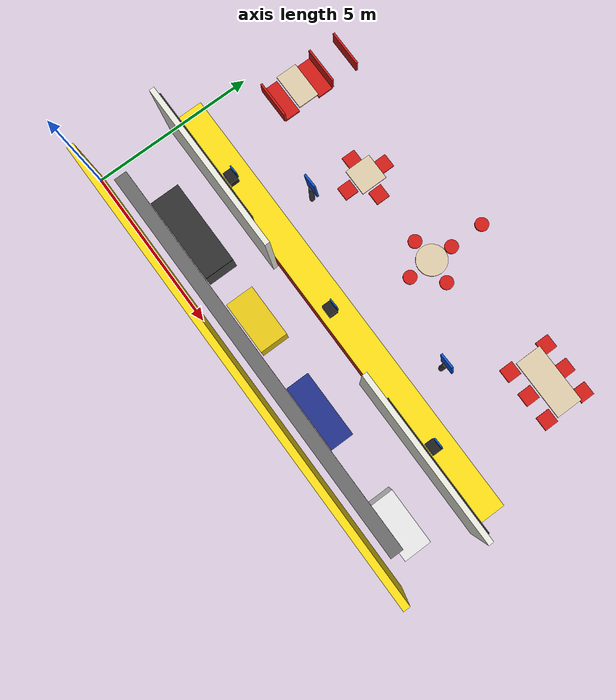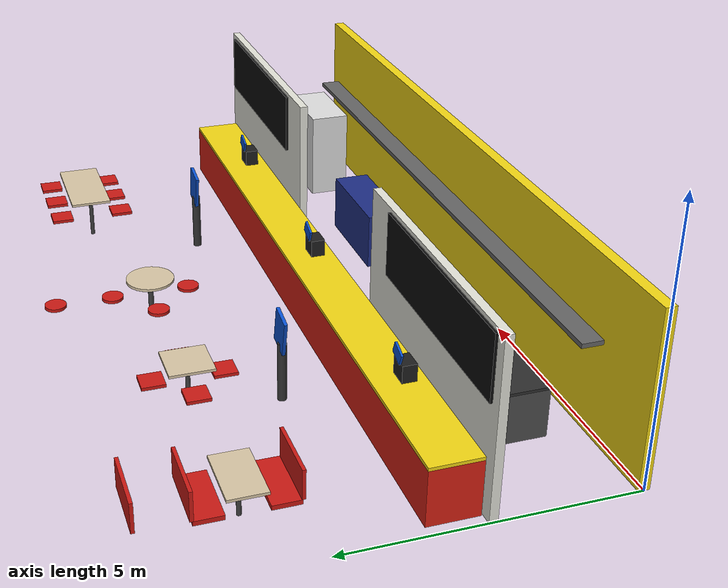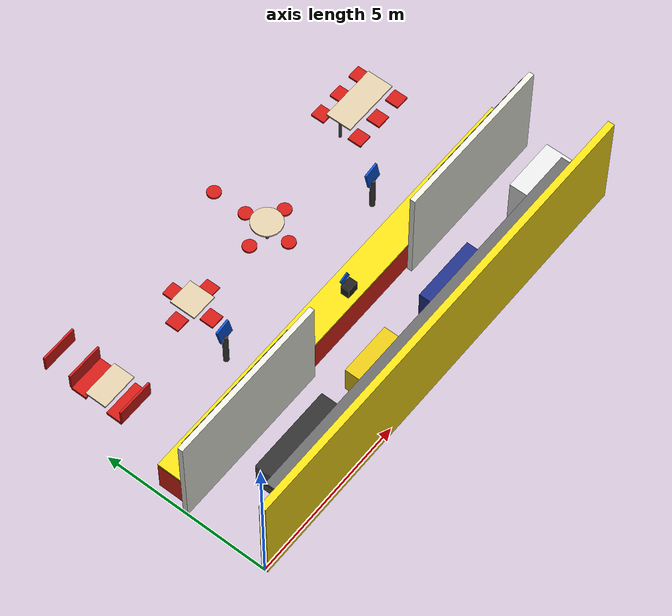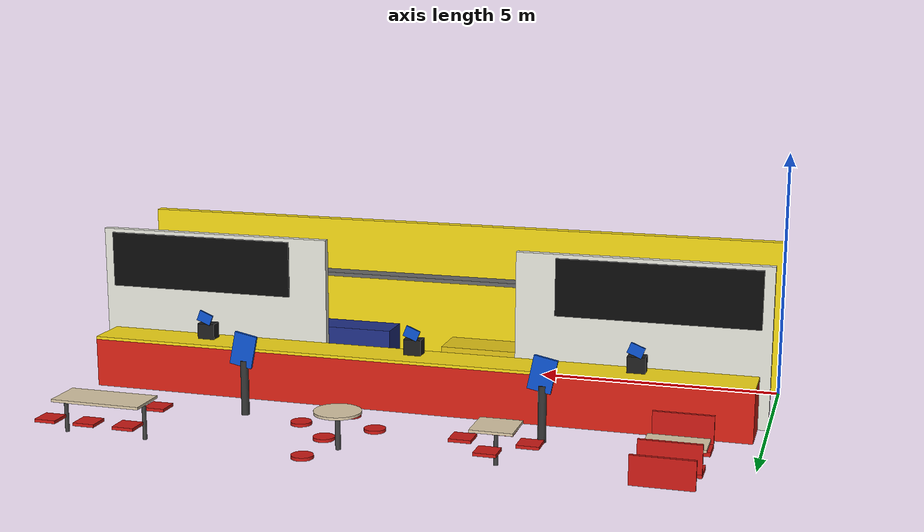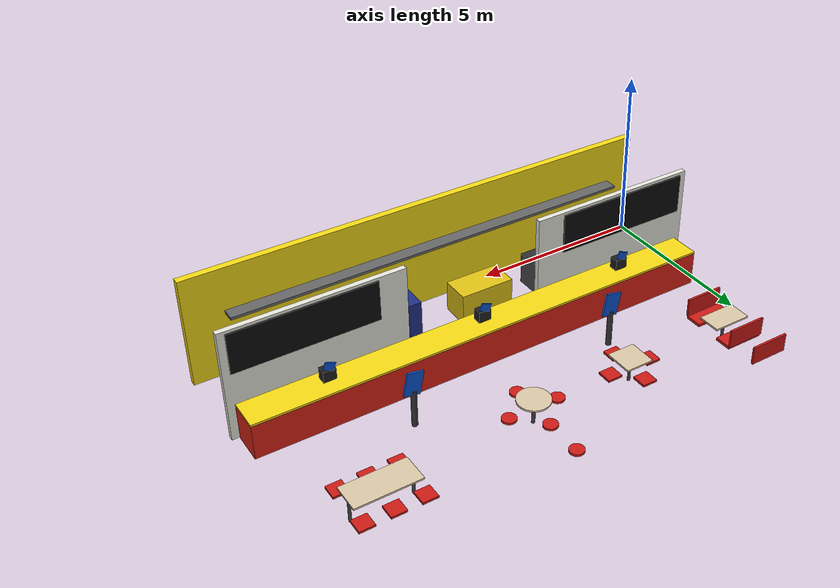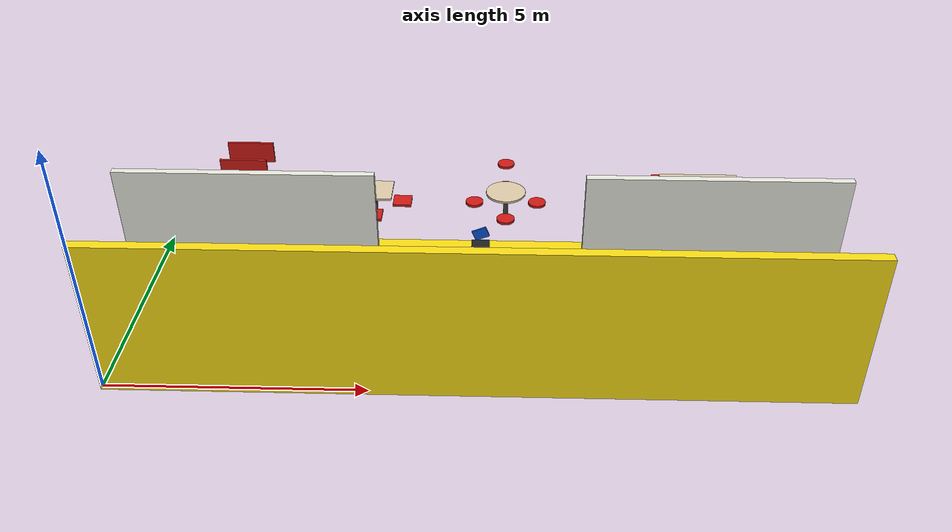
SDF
<sdf version="1.9">
 <world name="resto">
  <model name="wall_back">
   <static>true</static>
   <pose>7 0 1.6 0 0 0</pose>
   <link name="link">
    <collision name="col"><geometry><box><size>14 0.2 3.2</size></box></geometry></collision>
    <visual name="vis">
     <geometry><box><size>14 0.2 3.2</size></box></geometry>
     <material>
      <ambient>0.96 0.85 0.08 1</ambient>
      <diffuse>0.96 0.85 0.08 1</diffuse>
      <specular>0.1 0.1 0.05 1</specular>
     </material>
    </visual>
   </link>
  </model>
  <model name="kitchen_wall_left">
   <static>true</static>
   <pose>2.5 2.5 1.6 0 0 0</pose>
   <link name="link">
    <collision name="col"><geometry><box><size>5 0.15 3.2</size></box></geometry></collision>
    <visual name="vis">
     <geometry><box><size>5 0.15 3.2</size></box></geometry>
     <material><ambient>0.9 0.9 0.86 1</ambient><diffuse>0.9 0.9 0.86 1</diffuse></material>
    </visual>
   </link>
  </model>
  <model name="kitchen_wall_right">
   <static>true</static>
   <pose>11.5 2.5 1.6 0 0 0</pose>
   <link name="link">
    <collision name="col"><geometry><box><size>5 0.15 3.2</size></box></geometry></collision>
    <visual name="vis">
     <geometry><box><size>5 0.15 3.2</size></box></geometry>
     <material><ambient>0.9 0.9 0.86 1</ambient><diffuse>0.9 0.9 0.86 1</diffuse></material>
    </visual>
   </link>
  </model>
  <model name="kitchen_grill">
   <static>true</static>
   <pose>3.0 1.2 0.45 0 0 0</pose>
   <link name="link">
    <collision name="col"><geometry><box><size>2.6 0.9 0.9</size></box></geometry></collision>
    <visual name="vis">
     <geometry><box><size>2.6 0.9 0.9</size></box></geometry>
     <material>
      <ambient>0.28 0.28 0.28 1</ambient>
      <diffuse>0.3 0.3 0.3 1</diffuse>
      <specular>0.65 0.65 0.65 1</specular>
     </material>
    </visual>
   </link>
  </model>
  <model name="kitchen_grill_top">
   <static>true</static>
   <pose>3.0 1.2 0.92 0 0 0</pose>
   <link name="link">
    <collision name="col"><geometry><box><size>2.6 0.9 0.05</size></box></geometry></collision>
    <visual name="vis">
     <geometry><box><size>2.6 0.9 0.05</size></box></geometry>
     <material>
      <ambient>0.18 0.18 0.18 1</ambient>
      <diffuse>0.18 0.18 0.18 1</diffuse>
      <specular>0.85 0.85 0.85 1</specular>
     </material>
    </visual>
   </link>
  </model>
  <model name="kitchen_fryer">
   <static>true</static>
   <pose>6.0 1.2 0.45 0 0 0</pose>
   <link name="link">
    <collision name="col"><geometry><box><size>1.6 0.85 0.9</size></box></geometry></collision>
    <visual name="vis">
     <geometry><box><size>1.6 0.85 0.9</size></box></geometry>
     <material>
      <ambient>0.88 0.76 0.08 1</ambient>
      <diffuse>0.88 0.76 0.08 1</diffuse>
      <specular>0.4 0.35 0.1 1</specular>
     </material>
    </visual>
   </link>
  </model>
  <model name="kitchen_drinks_machine">
   <static>true</static>
   <pose>9.0 1.1 0.55 0 0 0</pose>
   <link name="link">
    <collision name="col"><geometry><box><size>2.0 0.7 1.1</size></box></geometry></collision>
    <visual name="vis">
     <geometry><box><size>2.0 0.7 1.1</size></box></geometry>
     <material>
      <ambient>0.12 0.18 0.52 1</ambient>
      <diffuse>0.12 0.18 0.52 1</diffuse>
      <specular>0.5 0.5 0.8 1</specular>
     </material>
    </visual>
   </link>
  </model>
  <model name="kitchen_fridge">
   <static>true</static>
   <pose>12.5 1.0 0.9 0 0 0</pose>
   <link name="link">
    <collision name="col"><geometry><box><size>1.6 0.8 1.8</size></box></geometry></collision>
    <visual name="vis">
     <geometry><box><size>1.6 0.8 1.8</size></box></geometry>
     <material>
      <ambient>0.88 0.88 0.88 1</ambient>
      <diffuse>0.88 0.88 0.88 1</diffuse>
      <specular>0.7 0.7 0.7 1</specular>
     </material>
    </visual>
   </link>
  </model>
  <model name="kitchen_warming_shelf">
   <static>true</static>
   <pose>7 0.55 2.1 0 0 0</pose>
   <link name="link">
    <collision name="col"><geometry><box><size>12 0.38 0.08</size></box></geometry></collision>
    <visual name="vis">
     <geometry><box><size>12 0.38 0.08</size></box></geometry>
     <material>
      <ambient>0.4 0.4 0.4 1</ambient>
      <diffuse>0.4 0.4 0.4 1</diffuse>
      <specular>0.75 0.75 0.75 1</specular>
     </material>
    </visual>
   </link>
  </model>
  <model name="menu_board_left">
   <static>true</static>
   <pose>2.2 2.58 2.55 0 0 0</pose>
   <link name="link">
    <collision name="col"><geometry><box><size>4.0 0.08 1.15</size></box></geometry></collision>
    <visual name="vis">
     <geometry><box><size>4.0 0.08 1.15</size></box></geometry>
     <material>
      <ambient>0.04 0.04 0.04 1</ambient>
      <diffuse>0.04 0.04 0.04 1</diffuse>
      <emissive>0.01 0.12 0.01 1</emissive>
      <specular>0.5 0.5 0.5 1</specular>
     </material>
    </visual>
   </link>
  </model>
  <model name="menu_board_right">
   <static>true</static>
   <pose>11.8 2.58 2.55 0 0 0</pose>
   <link name="link">
    <collision name="col"><geometry><box><size>4.0 0.08 1.15</size></box></geometry></collision>
    <visual name="vis">
     <geometry><box><size>4.0 0.08 1.15</size></box></geometry>
     <material>
      <ambient>0.04 0.04 0.04 1</ambient>
      <diffuse>0.04 0.04 0.04 1</diffuse>
      <emissive>0.01 0.12 0.01 1</emissive>
      <specular>0.5 0.5 0.5 1</specular>
     </material>
    </visual>
   </link>
  </model>
  <model name="counter_base">
   <static>true</static>
   <pose>7 3.05 0.5 0 0 0</pose>
   <link name="link">
    <collision name="col"><geometry><box><size>13.6 0.9 1.0</size></box></geometry></collision>
    <visual name="vis">
     <geometry><box><size>13.6 0.9 1.0</size></box></geometry>
     <material>
      <ambient>0.85 0.13 0.08 1</ambient>
      <diffuse>0.85 0.13 0.08 1</diffuse>
      <specular>0.2 0.1 0.1 1</specular>
     </material>
    </visual>
   </link>
  </model>
  <model name="counter_top">
   <static>true</static>
   <pose>7 3.05 1.03 0 0 0</pose>
   <link name="link">
    <collision name="col"><geometry><box><size>13.6 0.9 0.06</size></box></geometry></collision>
    <visual name="vis">
     <geometry><box><size>13.6 0.9 0.06</size></box></geometry>
     <material>
      <ambient>0.96 0.85 0.08 1</ambient>
      <diffuse>0.96 0.85 0.08 1</diffuse>
      <specular>0.55 0.5 0.1 1</specular>
     </material>
    </visual>
   </link>
  </model>
  <model name="reg1_body">
   <static>true</static>
   <pose>2.5 2.92 1.2 0 0 0</pose>
   <link name="link">
    <collision name="col"><geometry><box><size>0.36 0.26 0.36</size></box></geometry></collision>
    <visual name="vis">
     <geometry><box><size>0.36 0.26 0.36</size></box></geometry>
     <material>
      <ambient>0.1 0.1 0.1 1</ambient>
      <diffuse>0.12 0.12 0.12 1</diffuse>
      <specular>0.5 0.5 0.5 1</specular>
     </material>
    </visual>
   </link>
  </model>
  <model name="reg1_screen">
   <static>true</static>
   <pose>2.5 3.06 1.52 0 -0.38 0</pose>
   <link name="link">
    <collision name="col"><geometry><box><size>0.30 0.04 0.22</size></box></geometry></collision>
    <visual name="vis">
     <geometry><box><size>0.30 0.04 0.22</size></box></geometry>
     <material>
      <ambient>0.04 0.32 0.82 1</ambient>
      <diffuse>0.04 0.32 0.82 1</diffuse>
      <emissive>0.02 0.18 0.48 1</emissive>
      <specular>0.85 0.85 0.95 1</specular>
     </material>
    </visual>
   </link>
  </model>
  <model name="reg2_body">
   <static>true</static>
   <pose>7.0 2.92 1.2 0 0 0</pose>
   <link name="link">
    <collision name="col"><geometry><box><size>0.36 0.26 0.36</size></box></geometry></collision>
    <visual name="vis">
     <geometry><box><size>0.36 0.26 0.36</size></box></geometry>
     <material>
      <ambient>0.1 0.1 0.1 1</ambient>
      <diffuse>0.12 0.12 0.12 1</diffuse>
      <specular>0.5 0.5 0.5 1</specular>
     </material>
    </visual>
   </link>
  </model>
  <model name="reg2_screen">
   <static>true</static>
   <pose>7.0 3.06 1.52 0 -0.38 0</pose>
   <link name="link">
    <collision name="col"><geometry><box><size>0.30 0.04 0.22</size></box></geometry></collision>
    <visual name="vis">
     <geometry><box><size>0.30 0.04 0.22</size></box></geometry>
     <material>
      <ambient>0.04 0.32 0.82 1</ambient>
      <diffuse>0.04 0.32 0.82 1</diffuse>
      <emissive>0.02 0.18 0.48 1</emissive>
      <specular>0.85 0.85 0.95 1</specular>
     </material>
    </visual>
   </link>
  </model>
  <model name="reg3_body">
   <static>true</static>
   <pose>11.5 2.92 1.2 0 0 0</pose>
   <link name="link">
    <collision name="col"><geometry><box><size>0.36 0.26 0.36</size></box></geometry></collision>
    <visual name="vis">
     <geometry><box><size>0.36 0.26 0.36</size></box></geometry>
     <material>
      <ambient>0.1 0.1 0.1 1</ambient>
      <diffuse>0.12 0.12 0.12 1</diffuse>
      <specular>0.5 0.5 0.5 1</specular>
     </material>
    </visual>
   </link>
  </model>
  <model name="reg3_screen">
   <static>true</static>
   <pose>11.5 3.06 1.52 0 -0.38 0</pose>
   <link name="link">
    <collision name="col"><geometry><box><size>0.30 0.04 0.22</size></box></geometry></collision>
    <visual name="vis">
     <geometry><box><size>0.30 0.04 0.22</size></box></geometry>
     <material>
      <ambient>0.04 0.32 0.82 1</ambient>
      <diffuse>0.04 0.32 0.82 1</diffuse>
      <emissive>0.02 0.18 0.48 1</emissive>
      <specular>0.85 0.85 0.95 1</specular>
     </material>
    </visual>
   </link>
  </model>
  <model name="kiosk1_pole">
   <static>true</static>
   <pose>4.0 4.5 0.55 0 0 0</pose>
   <link name="link">
    <collision name="col">
     <geometry><cylinder><radius>0.08</radius><length>1.1</length></cylinder></geometry>
    </collision>
    <visual name="vis">
     <geometry><cylinder><radius>0.08</radius><length>1.1</length></cylinder></geometry>
     <material>
      <ambient>0.2 0.2 0.2 1</ambient>
      <diffuse>0.2 0.2 0.2 1</diffuse>
      <specular>0.7 0.7 0.7 1</specular>
     </material>
    </visual>
   </link>
  </model>
  <model name="kiosk1_screen">
   <static>true</static>
   <pose>4.0 4.52 1.32 0 -0.2 0</pose>
   <link name="link">
    <collision name="col"><geometry><box><size>0.46 0.06 0.66</size></box></geometry></collision>
    <visual name="vis">
     <geometry><box><size>0.46 0.06 0.66</size></box></geometry>
     <material>
      <ambient>0.04 0.32 0.82 1</ambient>
      <diffuse>0.04 0.32 0.82 1</diffuse>
      <emissive>0.02 0.15 0.42 1</emissive>
      <specular>0.9 0.9 1.0 1</specular>
     </material>
    </visual>
   </link>
  </model>
  <model name="kiosk2_pole">
   <static>true</static>
   <pose>10.0 4.5 0.55 0 0 0</pose>
   <link name="link">
    <collision name="col">
     <geometry><cylinder><radius>0.08</radius><length>1.1</length></cylinder></geometry>
    </collision>
    <visual name="vis">
     <geometry><cylinder><radius>0.08</radius><length>1.1</length></cylinder></geometry>
     <material>
      <ambient>0.2 0.2 0.2 1</ambient>
      <diffuse>0.2 0.2 0.2 1</diffuse>
      <specular>0.7 0.7 0.7 1</specular>
     </material>
    </visual>
   </link>
  </model>
  <model name="kiosk2_screen">
   <static>true</static>
   <pose>10.0 4.52 1.32 0 -0.2 0</pose>
   <link name="link">
    <collision name="col"><geometry><box><size>0.46 0.06 0.66</size></box></geometry></collision>
    <visual name="vis">
     <geometry><box><size>0.46 0.06 0.66</size></box></geometry>
     <material>
      <ambient>0.04 0.32 0.82 1</ambient>
      <diffuse>0.04 0.32 0.82 1</diffuse>
      <emissive>0.02 0.15 0.42 1</emissive>
      <specular>0.9 0.9 1.0 1</specular>
     </material>
    </visual>
   </link>
  </model>
  <model name="A1_table">
   <static>true</static>
   <pose>1.3 6.0 0.72 0 0 0</pose>
   <link name="link">
    <collision name="col"><geometry><box><size>1.1 0.65 0.05</size></box></geometry></collision>
    <visual name="vis">
     <geometry><box><size>1.1 0.65 0.05</size></box></geometry>
     <material>
      <ambient>0.85 0.78 0.65 1</ambient>
      <diffuse>0.85 0.78 0.65 1</diffuse>
      <specular>0.3 0.28 0.2 1</specular>
     </material>
    </visual>
   </link>
  </model>
  <model name="A1_leg">
   <static>true</static>
   <pose>1.3 6.0 0.36 0 0 0</pose>
   <link name="link">
    <collision name="col">
     <geometry><cylinder><radius>0.04</radius><length>0.72</length></cylinder></geometry>
    </collision>
    <visual name="vis">
     <geometry><cylinder><radius>0.04</radius><length>0.72</length></cylinder></geometry>
     <material><ambient>0.25 0.25 0.25 1</ambient><diffuse>0.25 0.25 0.25 1</diffuse></material>
    </visual>
   </link>
  </model>
  <model name="A1_bench_N">
   <static>true</static>
   <pose>1.3 5.42 0.45 0 0 0</pose>
   <link name="link">
    <collision name="col"><geometry><box><size>1.1 0.48 0.08</size></box></geometry></collision>
    <visual name="vis">
     <geometry><box><size>1.1 0.48 0.08</size></box></geometry>
     <material><ambient>0.80 0.10 0.08 1</ambient><diffuse>0.80 0.10 0.08 1</diffuse></material>
    </visual>
   </link>
  </model>
  <model name="A1_back_N">
   <static>true</static>
   <pose>1.3 5.17 0.75 0 0 0</pose>
   <link name="link">
    <collision name="col"><geometry><box><size>1.1 0.06 0.52</size></box></geometry></collision>
    <visual name="vis">
     <geometry><box><size>1.1 0.06 0.52</size></box></geometry>
     <material><ambient>0.80 0.10 0.08 1</ambient><diffuse>0.80 0.10 0.08 1</diffuse></material>
    </visual>
   </link>
  </model>
  <model name="A1_bench_S">
   <static>true</static>
   <pose>1.3 6.58 0.45 0 0 0</pose>
   <link name="link">
    <collision name="col"><geometry><box><size>1.1 0.48 0.08</size></box></geometry></collision>
    <visual name="vis">
     <geometry><box><size>1.1 0.48 0.08</size></box></geometry>
     <material><ambient>0.80 0.10 0.08 1</ambient><diffuse>0.80 0.10 0.08 1</diffuse></material>
    </visual>
   </link>
  </model>
  <model name="A1_back_S">
   <static>true</static>
   <pose>1.3 6.83 0.75 0 0 0</pose>
   <link name="link">
    <collision name="col"><geometry><box><size>1.1 0.06 0.52</size></box></geometry></collision>
    <visual name="vis">
     <geometry><box><size>1.1 0.06 0.52</size></box></geometry>
     <material><ambient>0.80 0.10 0.08 1</ambient><diffuse>0.80 0.10 0.08 1</diffuse></material>
    </visual>
   </link>
  </model>
  <model name="A2_back_N">
   <static>true</static>
   <pose>1.3 7.67 0.75 0 0 0</pose>
   <link name="link">
    <collision name="col"><geometry><box><size>1.1 0.06 0.52</size></box></geometry></collision>
    <visual name="vis">
     <geometry><box><size>1.1 0.06 0.52</size></box></geometry>
     <material><ambient>0.80 0.10 0.08 1</ambient><diffuse>0.80 0.10 0.08 1</diffuse></material>
    </visual>
   </link>
  </model>
  <model name="B1_top">
   <static>true</static>
   <pose>4.5 6.0 0.72 0 0 0</pose>
   <link name="link">
    <collision name="col"><geometry><box><size>0.80 0.80 0.05</size></box></geometry></collision>
    <visual name="vis">
     <geometry><box><size>0.80 0.80 0.05</size></box></geometry>
     <material>
      <ambient>0.85 0.78 0.65 1</ambient>
      <diffuse>0.85 0.78 0.65 1</diffuse>
      <specular>0.3 0.28 0.2 1</specular>
     </material>
    </visual>
   </link>
  </model>
  <model name="B1_leg">
   <static>true</static>
   <pose>4.5 6.0 0.36 0 0 0</pose>
   <link name="link">
    <collision name="col">
     <geometry><cylinder><radius>0.04</radius><length>0.72</length></cylinder></geometry>
    </collision>
    <visual name="vis">
     <geometry><cylinder><radius>0.04</radius><length>0.72</length></cylinder></geometry>
     <material><ambient>0.25 0.25 0.25 1</ambient><diffuse>0.25 0.25 0.25 1</diffuse></material>
    </visual>
   </link>
  </model>
  <model name="B1_cN">
   <static>true</static>
   <pose>4.5 5.38 0.45 0 0 0</pose>
   <link name="link">
    <collision name="col"><geometry><box><size>0.42 0.42 0.06</size></box></geometry></collision>
    <visual name="vis">
     <geometry><box><size>0.42 0.42 0.06</size></box></geometry>
     <material><ambient>0.80 0.10 0.08 1</ambient><diffuse>0.80 0.10 0.08 1</diffuse></material>
    </visual>
   </link>
  </model>
  <model name="B1_cS">
   <static>true</static>
   <pose>4.5 6.62 0.45 0 0 0</pose>
   <link name="link">
    <collision name="col"><geometry><box><size>0.42 0.42 0.06</size></box></geometry></collision>
    <visual name="vis">
     <geometry><box><size>0.42 0.42 0.06</size></box></geometry>
     <material><ambient>0.80 0.10 0.08 1</ambient><diffuse>0.80 0.10 0.08 1</diffuse></material>
    </visual>
   </link>
  </model>
  <model name="B1_cW">
   <static>true</static>
   <pose>3.88 6.0 0.45 0 0 0</pose>
   <link name="link">
    <collision name="col"><geometry><box><size>0.42 0.42 0.06</size></box></geometry></collision>
    <visual name="vis">
     <geometry><box><size>0.42 0.42 0.06</size></box></geometry>
     <material><ambient>0.80 0.10 0.08 1</ambient><diffuse>0.80 0.10 0.08 1</diffuse></material>
    </visual>
   </link>
  </model>
  <model name="B1_cE">
   <static>true</static>
   <pose>5.12 6.0 0.45 0 0 0</pose>
   <link name="link">
    <collision name="col"><geometry><box><size>0.42 0.42 0.06</size></box></geometry></collision>
    <visual name="vis">
     <geometry><box><size>0.42 0.42 0.06</size></box></geometry>
     <material><ambient>0.80 0.10 0.08 1</ambient><diffuse>0.80 0.10 0.08 1</diffuse></material>
    </visual>
   </link>
  </model>
  <model name="C1_top">
   <static>true</static>
   <pose>7.5 6.0 0.72 0 0 0</pose>
   <link name="link">
    <collision name="col">
     <geometry><cylinder><radius>0.45</radius><length>0.05</length></cylinder></geometry>
    </collision>
    <visual name="vis">
     <geometry><cylinder><radius>0.45</radius><length>0.05</length></cylinder></geometry>
     <material>
      <ambient>0.85 0.78 0.65 1</ambient>
      <diffuse>0.85 0.78 0.65 1</diffuse>
      <specular>0.3 0.28 0.2 1</specular>
     </material>
    </visual>
   </link>
  </model>
  <model name="C1_leg">
   <static>true</static>
   <pose>7.5 6.0 0.36 0 0 0</pose>
   <link name="link">
    <collision name="col">
     <geometry><cylinder><radius>0.05</radius><length>0.72</length></cylinder></geometry>
    </collision>
    <visual name="vis">
     <geometry><cylinder><radius>0.05</radius><length>0.72</length></cylinder></geometry>
     <material><ambient>0.25 0.25 0.25 1</ambient><diffuse>0.25 0.25 0.25 1</diffuse></material>
    </visual>
   </link>
  </model>
  <model name="C1_cN">
   <static>true</static>
   <pose>7.5 5.28 0.45 0 0 0</pose>
   <link name="link">
    <collision name="col">
     <geometry><cylinder><radius>0.20</radius><length>0.06</length></cylinder></geometry>
    </collision>
    <visual name="vis">
     <geometry><cylinder><radius>0.20</radius><length>0.06</length></cylinder></geometry>
     <material><ambient>0.80 0.10 0.08 1</ambient><diffuse>0.80 0.10 0.08 1</diffuse></material>
    </visual>
   </link>
  </model>
  <model name="C1_cS">
   <static>true</static>
   <pose>7.5 6.72 0.45 0 0 0</pose>
   <link name="link">
    <collision name="col">
     <geometry><cylinder><radius>0.20</radius><length>0.06</length></cylinder></geometry>
    </collision>
    <visual name="vis">
     <geometry><cylinder><radius>0.20</radius><length>0.06</length></cylinder></geometry>
     <material><ambient>0.80 0.10 0.08 1</ambient><diffuse>0.80 0.10 0.08 1</diffuse></material>
    </visual>
   </link>
  </model>
  <model name="C1_cW">
   <static>true</static>
   <pose>6.78 6.0 0.45 0 0 0</pose>
   <link name="link">
    <collision name="col">
     <geometry><cylinder><radius>0.20</radius><length>0.06</length></cylinder></geometry>
    </collision>
    <visual name="vis">
     <geometry><cylinder><radius>0.20</radius><length>0.06</length></cylinder></geometry>
     <material><ambient>0.80 0.10 0.08 1</ambient><diffuse>0.80 0.10 0.08 1</diffuse></material>
    </visual>
   </link>
  </model>
  <model name="C1_cE">
   <static>true</static>
   <pose>8.22 6.0 0.45 0 0 0</pose>
   <link name="link">
    <collision name="col">
     <geometry><cylinder><radius>0.20</radius><length>0.06</length></cylinder></geometry>
    </collision>
    <visual name="vis">
     <geometry><cylinder><radius>0.20</radius><length>0.06</length></cylinder></geometry>
     <material><ambient>0.80 0.10 0.08 1</ambient><diffuse>0.80 0.10 0.08 1</diffuse></material>
    </visual>
   </link>
  </model>
  <model name="C2_cN">
   <static>true</static>
   <pose>7.5 7.78 0.45 0 0 0</pose>
   <link name="link">
    <collision name="col">
     <geometry><cylinder><radius>0.20</radius><length>0.06</length></cylinder></geometry>
    </collision>
    <visual name="vis">
     <geometry><cylinder><radius>0.20</radius><length>0.06</length></cylinder></geometry>
     <material><ambient>0.80 0.10 0.08 1</ambient><diffuse>0.80 0.10 0.08 1</diffuse></material>
    </visual>
   </link>
  </model>
  <model name="D1_top">
   <static>true</static>
   <pose>12.0 6.5 0.72 0 0 0</pose>
   <link name="link">
    <collision name="col"><geometry><box><size>1.80 0.80 0.05</size></box></geometry></collision>
    <visual name="vis">
     <geometry><box><size>1.80 0.80 0.05</size></box></geometry>
     <material>
      <ambient>0.85 0.78 0.65 1</ambient>
      <diffuse>0.85 0.78 0.65 1</diffuse>
      <specular>0.3 0.28 0.2 1</specular>
     </material>
    </visual>
   </link>
  </model>
  <model name="D1_legW">
   <static>true</static>
   <pose>11.18 6.5 0.36 0 0 0</pose>
   <link name="link">
    <collision name="col">
     <geometry><cylinder><radius>0.04</radius><length>0.72</length></cylinder></geometry>
    </collision>
    <visual name="vis">
     <geometry><cylinder><radius>0.04</radius><length>0.72</length></cylinder></geometry>
     <material><ambient>0.25 0.25 0.25 1</ambient><diffuse>0.25 0.25 0.25 1</diffuse></material>
    </visual>
   </link>
  </model>
  <model name="D1_legE">
   <static>true</static>
   <pose>12.82 6.5 0.36 0 0 0</pose>
   <link name="link">
    <collision name="col">
     <geometry><cylinder><radius>0.04</radius><length>0.72</length></cylinder></geometry>
    </collision>
    <visual name="vis">
     <geometry><cylinder><radius>0.04</radius><length>0.72</length></cylinder></geometry>
     <material><ambient>0.25 0.25 0.25 1</ambient><diffuse>0.25 0.25 0.25 1</diffuse></material>
    </visual>
   </link>
  </model>
  <model name="D1_cN1">
   <static>true</static>
   <pose>11.2 5.88 0.45 0 0 0</pose>
   <link name="link">
    <collision name="col"><geometry><box><size>0.42 0.42 0.06</size></box></geometry></collision>
    <visual name="vis">
     <geometry><box><size>0.42 0.42 0.06</size></box></geometry>
     <material><ambient>0.80 0.10 0.08 1</ambient><diffuse>0.80 0.10 0.08 1</diffuse></material>
    </visual>
   </link>
  </model>
  <model name="D1_cN2">
   <static>true</static>
   <pose>12.0 5.88 0.45 0 0 0</pose>
   <link name="link">
    <collision name="col"><geometry><box><size>0.42 0.42 0.06</size></box></geometry></collision>
    <visual name="vis">
     <geometry><box><size>0.42 0.42 0.06</size></box></geometry>
     <material><ambient>0.80 0.10 0.08 1</ambient><diffuse>0.80 0.10 0.08 1</diffuse></material>
    </visual>
   </link>
  </model>
  <model name="D1_cN3">
   <static>true</static>
   <pose>12.8 5.88 0.45 0 0 0</pose>
   <link name="link">
    <collision name="col"><geometry><box><size>0.42 0.42 0.06</size></box></geometry></collision>
    <visual name="vis">
     <geometry><box><size>0.42 0.42 0.06</size></box></geometry>
     <material><ambient>0.80 0.10 0.08 1</ambient><diffuse>0.80 0.10 0.08 1</diffuse></material>
    </visual>
   </link>
  </model>
  <model name="D1_cS1">
   <static>true</static>
   <pose>11.2 7.12 0.45 0 0 0</pose>
   <link name="link">
    <collision name="col"><geometry><box><size>0.42 0.42 0.06</size></box></geometry></collision>
    <visual name="vis">
     <geometry><box><size>0.42 0.42 0.06</size></box></geometry>
     <material><ambient>0.80 0.10 0.08 1</ambient><diffuse>0.80 0.10 0.08 1</diffuse></material>
    </visual>
   </link>
  </model>
  <model name="D1_cS2">
   <static>true</static>
   <pose>12.0 7.12 0.45 0 0 0</pose>
   <link name="link">
    <collision name="col"><geometry><box><size>0.42 0.42 0.06</size></box></geometry></collision>
    <visual name="vis">
     <geometry><box><size>0.42 0.42 0.06</size></box></geometry>
     <material><ambient>0.80 0.10 0.08 1</ambient><diffuse>0.80 0.10 0.08 1</diffuse></material>
    </visual>
   </link>
  </model>
  <model name="D1_cS3">
   <static>true</static>
   <pose>12.8 7.12 0.45 0 0 0</pose>
   <link name="link">
    <collision name="col"><geometry><box><size>0.42 0.42 0.06</size></box></geometry></collision>
    <visual name="vis">
     <geometry><box><size>0.42 0.42 0.06</size></box></geometry>
     <material><ambient>0.80 0.10 0.08 1</ambient><diffuse>0.80 0.10 0.08 1</diffuse></material>
    </visual>
   </link>
  </model>
 </world>
</sdf>
